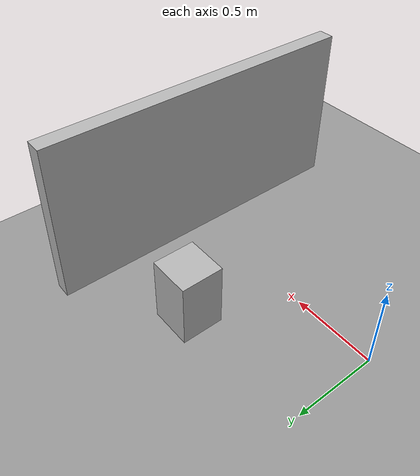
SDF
<?xml version="1.0"?>
<sdf version="1.6"><world name="tof_test">
  <light name="sun" type="directional"><cast_shadows>true</cast_shadows><pose>0 0 10 0 0 0</pose><diffuse>0.8 0.8 0.8 1</diffuse><specular>0.2 0.2 0.2 1</specular><direction>-0.5 0.1 -0.9</direction></light>
  <model name="ground"><static>true</static><link name="link"><collision name="collision"><geometry><plane><normal>0 0 1</normal><size>20 20</size></plane></geometry></collision><visual name="visual"><geometry><plane><normal>0 0 1</normal><size>20 20</size></plane></geometry><material><ambient>0.4 0.4 0.4 1</ambient><diffuse>0.6 0.6 0.6 1</diffuse></material></visual></link></model>
  <model name="front_wall"><static>true</static><pose>1.4 0 0.5 0 0 0</pose><link name="link"><collision name="collision"><geometry><box><size>0.10 2.0 1.0</size></box></geometry></collision><visual name="visual"><geometry><box><size>0.10 2.0 1.0</size></box></geometry></visual></link></model>
  <model name="left_block"><static>true</static><pose>0.8 0.55 0.20 0 0 0</pose><link name="link"><collision name="collision"><geometry><box><size>0.25 0.25 0.40</size></box></geometry></collision><visual name="visual"><geometry><box><size>0.25 0.25 0.40</size></box></geometry></visual></link></model>
</world></sdf>
